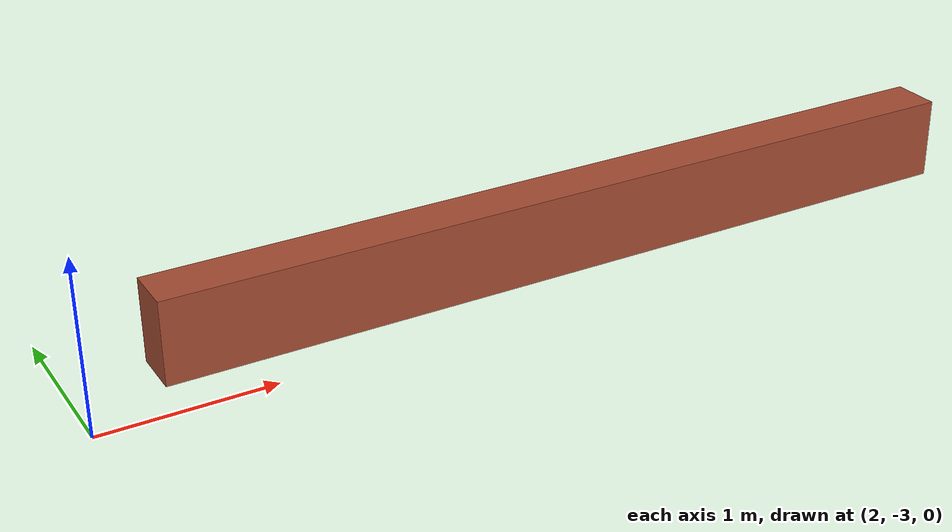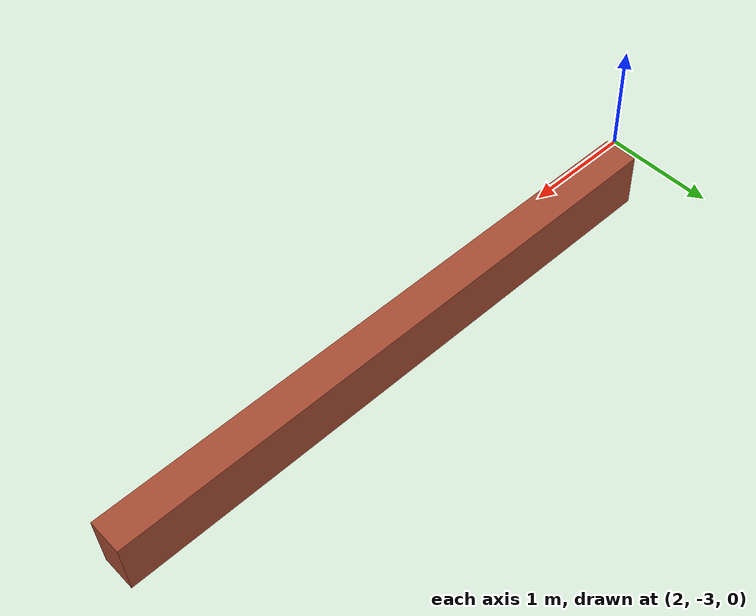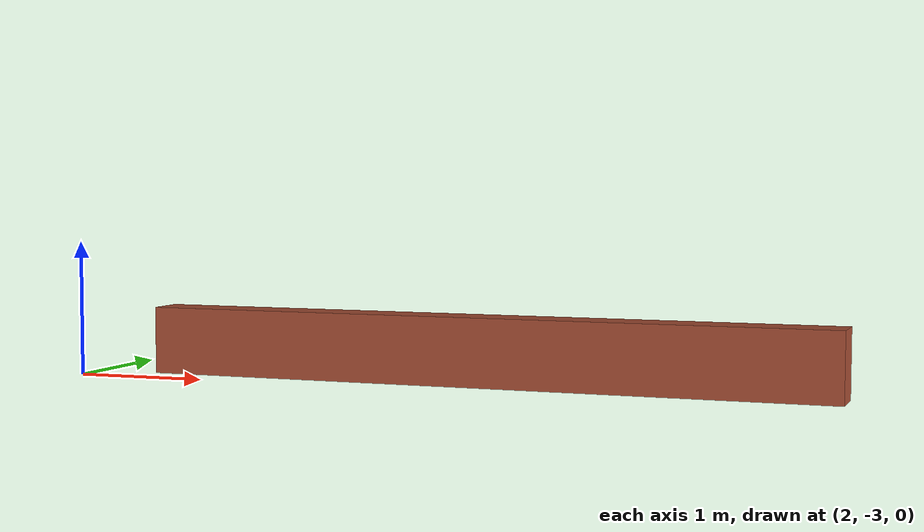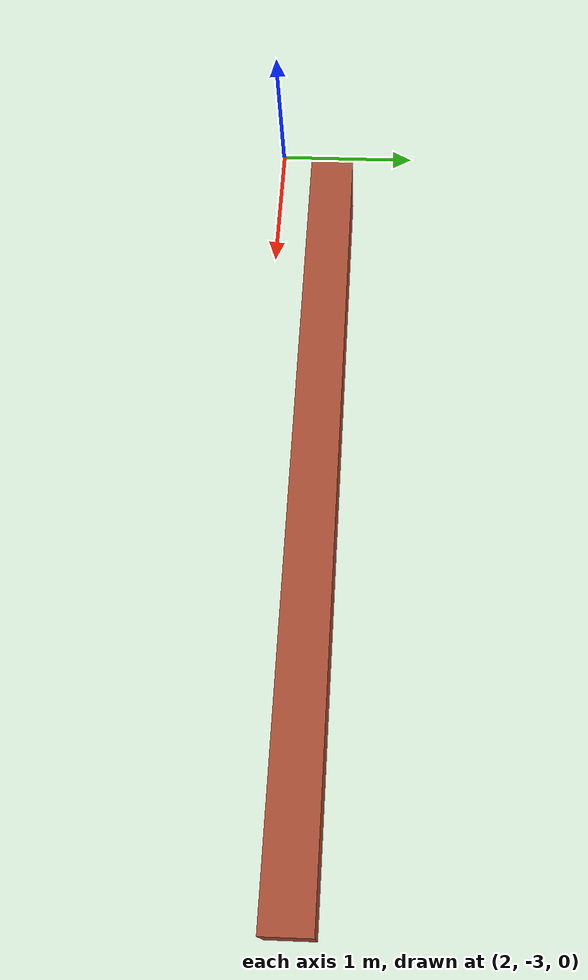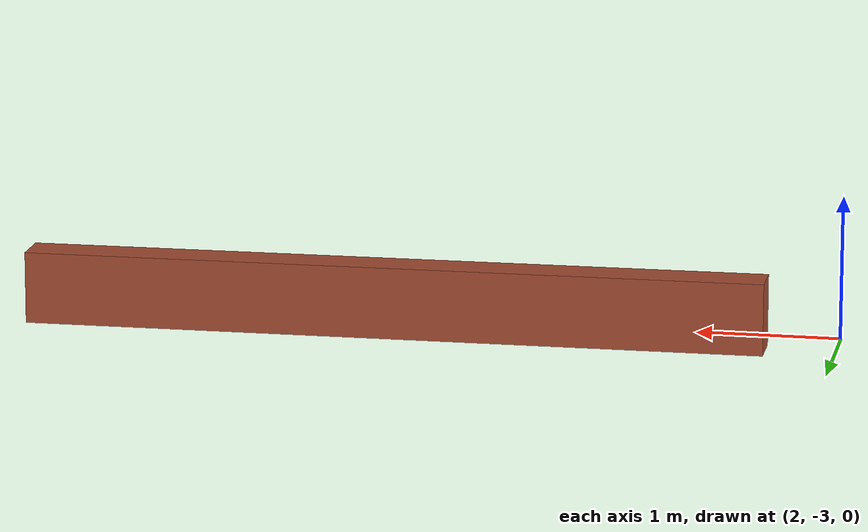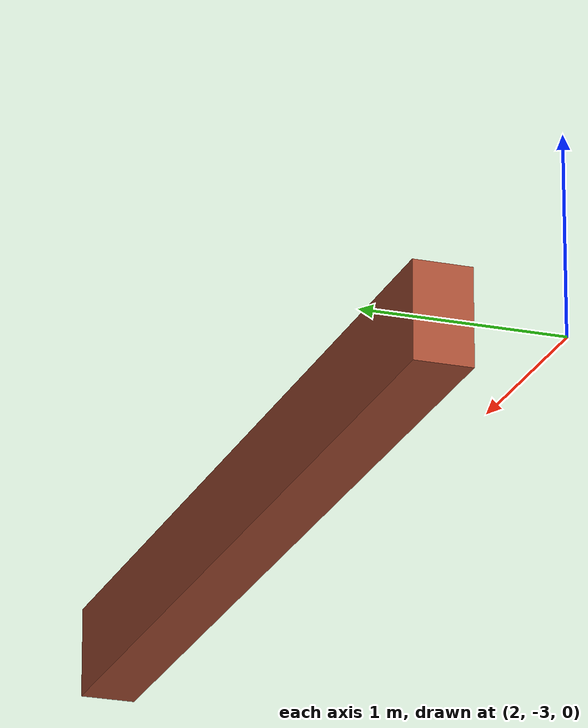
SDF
<?xml version='1.0'?>
<sdf version='1.6'>
  <model name='brickhalf'>
    <pose frame=''>5.051 -2.589 0 0 -0 0</pose>
    <link name='Wall_2'>
      <collision name='Wall_2_Collision'>
        <geometry>
          <box>
            <size>5.15 0.3 0.5</size>
          </box>
        </geometry>
        <pose frame=''>0 0 0.25 0 -0 0</pose>
      </collision>
      <visual name='Wall_2_Visual'>
        <pose frame=''>0 0 0.25 0 -0 0</pose>
        <geometry>
          <box>
            <size>5.15 0.3 0.5</size>
          </box>
        </geometry>
        <material>
          <script>
            <uri>file://media/materials/scripts/gazebo.material</uri>
            <name>Gazebo/Bricks</name>
          </script>
          <ambient>1 1 1 1</ambient>
        </material>
        <meta>
          <layer>0</layer>
        </meta>
      </visual>
      <pose frame=''>0 0 0 0 -0 0</pose>
    </link>
    <static>1</static>
  </model>
</sdf>
